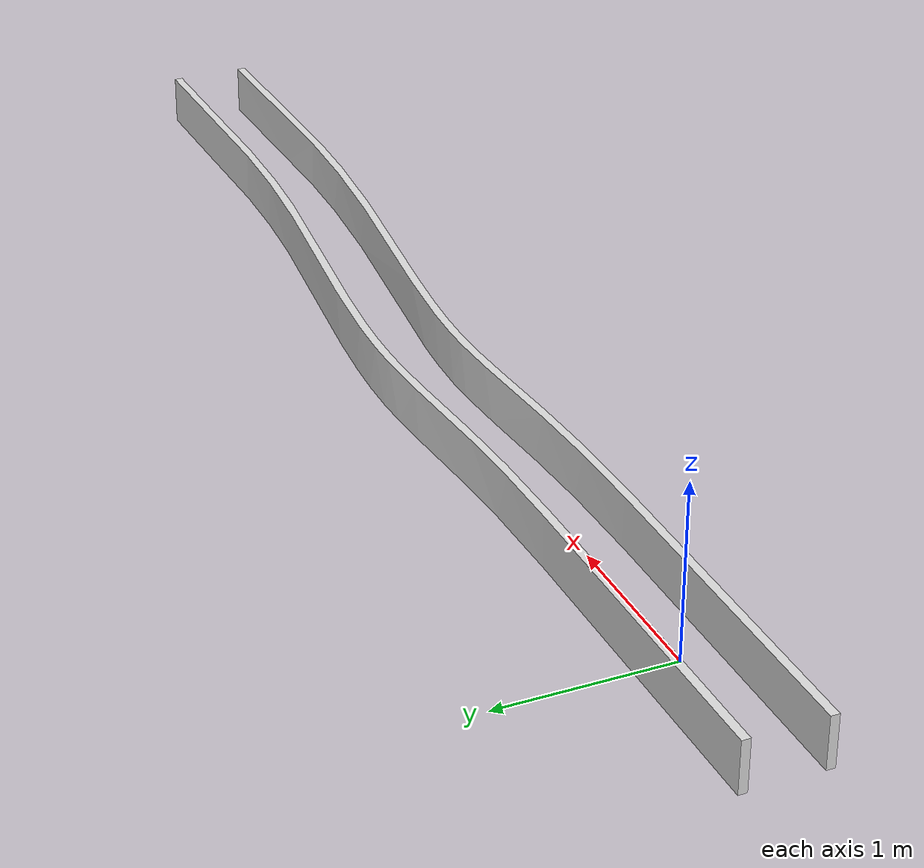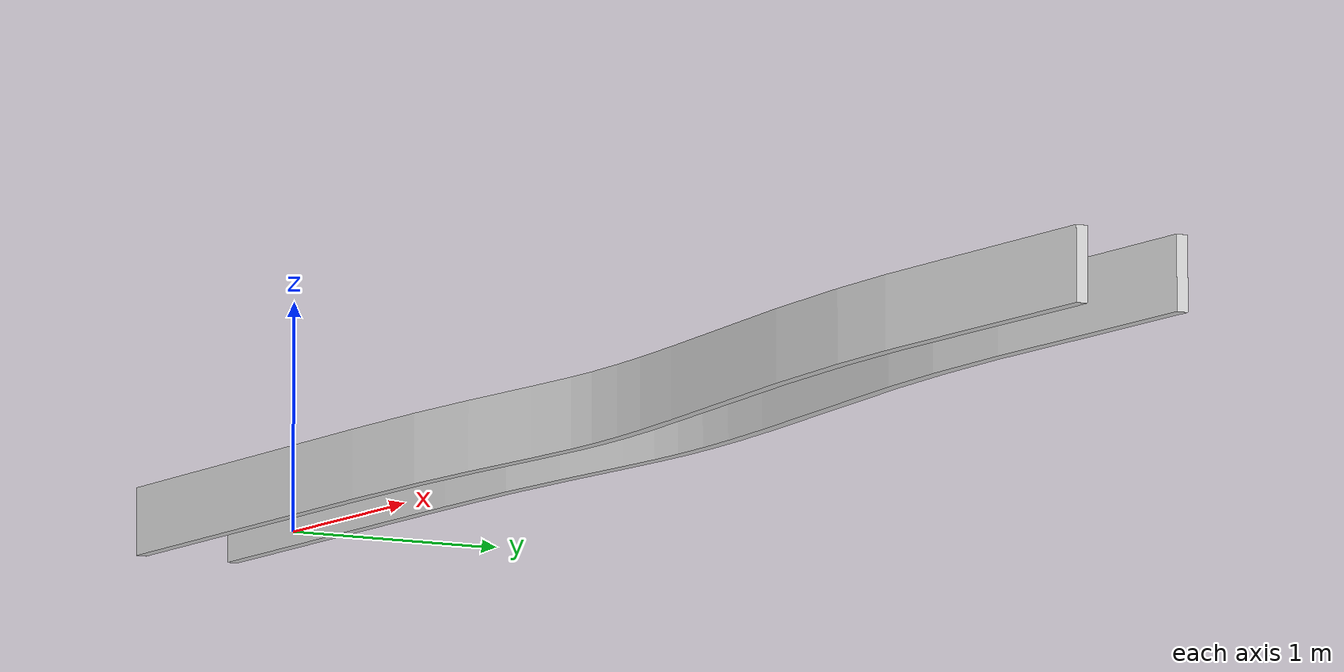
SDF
<?xml version="1.0" ?>
<sdf version="1.5">
  <model name="Exercise6 Track">
    <link name="link">
      <inertial>
        <pose>0 0 0 0 0 0</pose>
        <mass>1000.0</mass>
        <inertia>
          <ixx>1000.0</ixx>
          <ixy>0</ixy>
          <ixz>0</ixz>
          <iyy>1000.0</iyy>
          <iyz>0</iyz>
          <izz>1000.0</izz>
        </inertia>
      </inertial>

      <visual name="visual">
        <geometry>
          <mesh>
            <uri>model://exercise6_track/meshes/exercise6_track.dae</uri>
          </mesh>
        </geometry>
      </visual>

      <collision name="collision">
        <geometry>
          <mesh>
            <uri>model://exercise6_track/meshes/exercise6_track.dae</uri>
          </mesh>
        </geometry>
      </collision>
    </link>
  </model>
</sdf>
